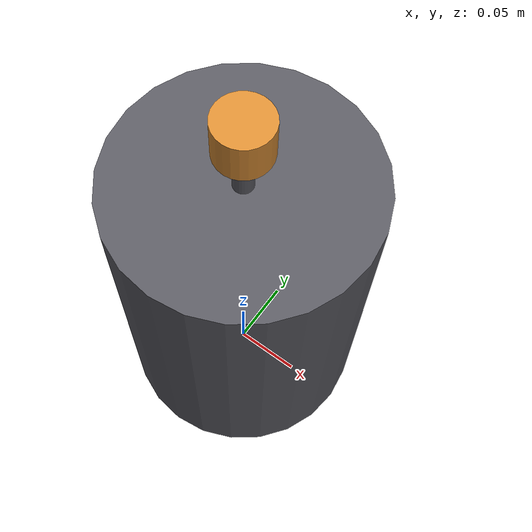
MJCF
<mujoco model="fingertip_disk">
  <worldbody>
    <body name="object">
      <!-- Pedestal: bottom on the table top, i.e. 0.001 below the body origin. -->
      <geom name="fingertip_disk_pedestal" type="cylinder" size="0.090 0.125" pos="0 0 0.124"
            mass="100" contype="1" conaffinity="1" condim="4" friction="1 0.5 0.01"
            rgba="0.35 0.35 0.38 1"/>
      <!-- Neck: pedestal top up to the underside of the disk. -->
      <geom name="fingertip_disk_neck" type="cylinder" size="0.007 0.018" pos="0 0 0.267"
            mass="0.0055" contype="1" conaffinity="1" condim="4" friction="1 0.5 0.01"
            rgba="0.35 0.35 0.38 1"/>
      <!-- Disk: the only part the fingers are meant to touch. -->
      <geom name="fingertip_disk_disk" type="cylinder" size="0.019 0.015" pos="0 0 0.299"
            mass="0.034" contype="1" conaffinity="1" condim="4" friction="1 0.5 0.01"
            rgba="0.85 0.55 0.20 1"/>
    </body>
  </worldbody>
</mujoco>
